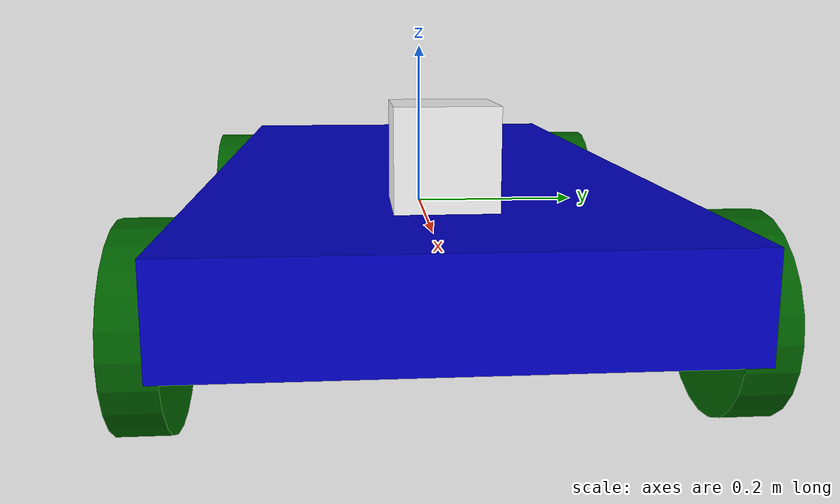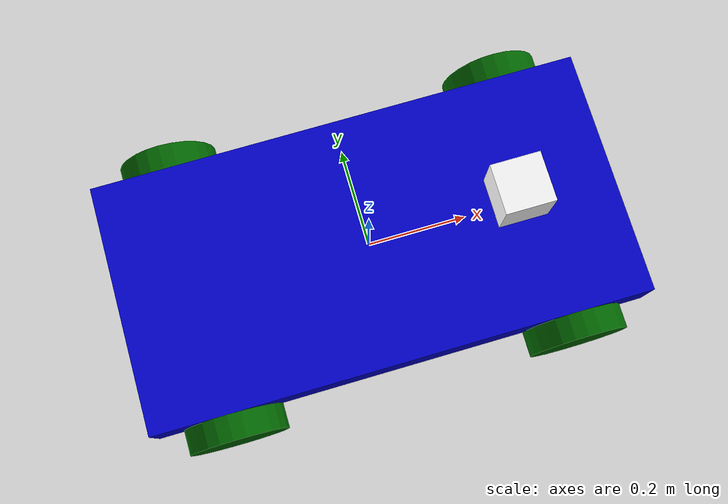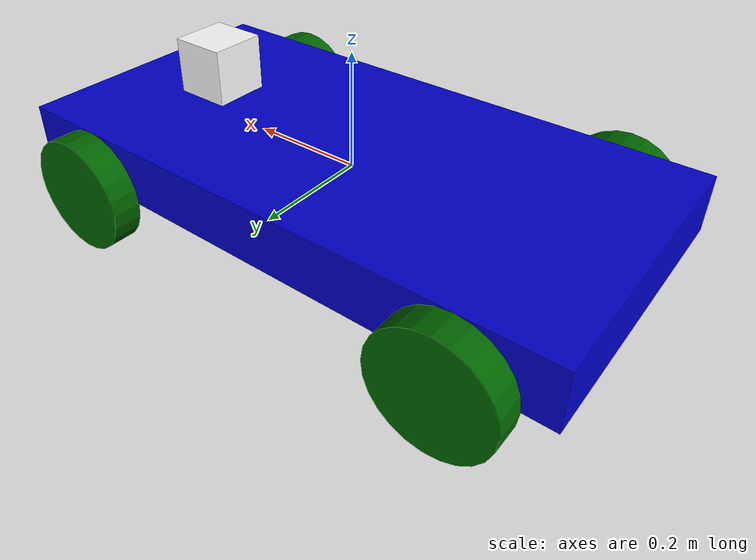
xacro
<?xml version="1.0"?>
<!--mycar.urdf.xacro 不能直接作为base ,因为base和激光head 把mycar分成了几部分;transmission也是放在gazebo文件中的-->
<robot name="smartcar_body" xmlns:xacro="http://www.ros.org/wiki/xacro" >
    <xacro:property name="length" value="1" />
    <xacro:property name="width" value="0.5" />
    <xacro:property name="height" value="0.1" />
    <xacro:property name="wheelLen" value="0.05" />
    <xacro:property name="wheeldiam" value="0.1" />
  <xacro:property name="wheeldis" value="0.15" />
  <xacro:property name="polelen" value="0.2" />
  <xacro:property name="bodylen" value="0.6" />
  <xacro:property name="baselen" value="0.4" />
  <xacro:property name="pi" value="3.1415926" />

    <xacro:macro name="default_inertial" params="mass">
    <inertial>
      <mass value="${mass}" />
      <inertia ixx="1.0" ixy="0.0" ixz="0.0" iyy="1.0" iyz="0.0" izz="1.0" />
    </inertial>
  </xacro:macro>

  <link name="base_link">
    <visual>
      <geometry>
        <box size="${length} ${width} ${height}"/>
    </geometry>
    <material name="blue">
        <color rgba="0 0 .8 1"/>
    </material>
    </visual>
    <collision>
      <geometry>
      <box size="${length} ${width} ${height}"/>
      </geometry>
        <origin rpy="0 0 0" xyz="0 0 0"/>
    </collision>
    <xacro:default_inertial mass="5"/>
 </link>

 <link name="right_front_wheel">
    <visual>
        <geometry>
            <cylinder length="${wheelLen}" radius="${wheeldiam}"/>
        </geometry>
        <material name="black">
            <color rgba="0 100 0 1"/>
        </material>
    </visual>
    <collision>
        <geometry>
        <cylinder length="${wheelLen}" radius="${wheeldiam}"/>
        </geometry>
    </collision>
    <xacro:default_inertial mass="2"/>
  </link>

  <joint name="right_front_wheel_joint" type="continuous">
    <axis xyz="0 0 1"/>
    <parent link="base_link"/>
    <child link="right_front_wheel"/>
    <origin rpy=" ${pi/2.0}  0  0"  xyz="${length/2-0.15} ${-width/2-0.025} -0.05"/>
    <limit effort="100" velocity="100"/>
    <joint_properties damping="0.0" friction="0.0"/>
  </joint>

  <link name="right_back_wheel">
      <visual>
          <geometry>
              <cylinder length="${wheelLen}" radius="${wheeldiam}"/>
          </geometry>
          <material name="black">
              <color rgba="0 100 0 1"/>
          </material>
      </visual>
      <collision>
          <geometry>
              <cylinder length="${wheelLen}" radius="${wheeldiam}"/>
          </geometry>
          <origin  rpy="0 0 0" xyz="0 0 0"/>
      </collision>
    <xacro:default_inertial mass="2"/>
  </link>

  <joint name="right_back_wheel_joint" type="continuous">
    <axis xyz="0 0 1"/>
    <parent link="base_link"/>
    <child link="right_back_wheel"/>
      <origin rpy=" ${pi/2}  0  0"  xyz="${-length/2+0.15} ${-width/2-0.025} -0.05"/>
    <limit effort="100" velocity="100"/>
    <joint_properties damping="0.0" friction="0.0"/>
 </joint>

 <link name="left_front_wheel">
     <visual>
         <geometry>
             <cylinder length="${wheelLen}" radius="${wheeldiam}"/>
         </geometry>
         <origin  rpy="0 0 0" xyz="0 0 0"/>
         <material name="black">
             <color rgba="0 100 0 1"/>
         </material>
     </visual>
     <collision>
         <geometry>
             <cylinder length="${wheelLen}" radius="${wheeldiam}"/>
         </geometry>
     </collision>
    <xacro:default_inertial mass="2"/>
  </link>

  <joint name="left_front_wheel_joint" type="continuous">
    <axis xyz="0 0 1"/>
    <parent link="base_link"/>
    <child link="left_front_wheel"/>
      <origin rpy=" ${pi/2}  0  0"  xyz="${length/2-0.15} ${width/2+0.025} -0.05"/>
    <limit effort="100" velocity="100"/>
    <joint_properties damping="0.0" friction="0.0"/>
  </joint>

  <link name="left_back_wheel">
      <visual>
          <geometry>
              <cylinder length="${wheelLen}" radius="${wheeldiam}"/>
          </geometry>
          <origin  rpy="0 0 0" xyz="0 0 0"/>
          <material name="black">
              <color rgba="0 100 0 1"/>
          </material>
      </visual>
      <collision>
          <geometry>
              <cylinder length="${wheelLen}" radius="${wheeldiam}"/>
          </geometry>
      </collision>
    <xacro:default_inertial mass="2"/>
  </link>

  <joint name="left_back_wheel_joint" type="continuous">
    <axis xyz="0 0 1"/>
    <parent link="base_link"/>
    <child link="left_back_wheel"/>
      <origin rpy=" ${pi/2}  0  0"  xyz="${-length/2+0.15} ${width/2+0.025} -0.05"/>
    <limit effort="100" velocity="100"/>
    <joint_properties damping="0.0" friction="0.0"/>
  </joint>

  <link name="head">
    <visual>
      <geometry>
        <box size=".1 .1 .1"/>
      </geometry>
        <origin xyz="0 0 0" rpy="0 0 0" />
      <material name="white">
          <color rgba="1 1 1 1"/>
      </material>
    </visual>
    <collision>
      <origin xyz="0 0 0" rpy="0 0 0" />
      <geometry>
      <box size=".1 .1 .1"/>
      </geometry>
    </collision>
    <xacro:default_inertial mass="0.25"/>
  </link>

  <joint name="tobox" type="fixed">
    <parent link="base_link"/>
    <child link="head"/>
    <origin xyz="${length/2-0.2} 0 0.1"/>
  </joint>

<transmission name="left_front_trans">
  <type>transmission_interface/SimpleTransmission</type>
  <joint name="left_front_wheel_joint">
    <hardwareInterface>EffortJointInterface</hardwareInterface>
  </joint>
  <actuator name="left_front_wheel_joint_motor">
    <mechanicalReduction>50</mechanicalReduction>
    <hardwareInterface>EffortJointInterface</hardwareInterface>
  </actuator>
</transmission>

<transmission name="right_front_trans">
  <type>transmission_interface/SimpleTransmission</type>
  <joint name="right_front_wheel_joint">
    <hardwareInterface>EffortJointInterface</hardwareInterface>
  </joint>
  <actuator name="right_front_wheel_joint_motor">
    <mechanicalReduction>50</mechanicalReduction>
    <hardwareInterface>EffortJointInterface</hardwareInterface>
  </actuator>
</transmission>

<!-- ros_control plugin -->
<gazebo>
    <plugin name="gazebo_ros_control" filename="libgazebo_ros_control.so">
      <robotNamespace>/robot</robotNamespace>
    </plugin>
  </gazebo>
</robot>
